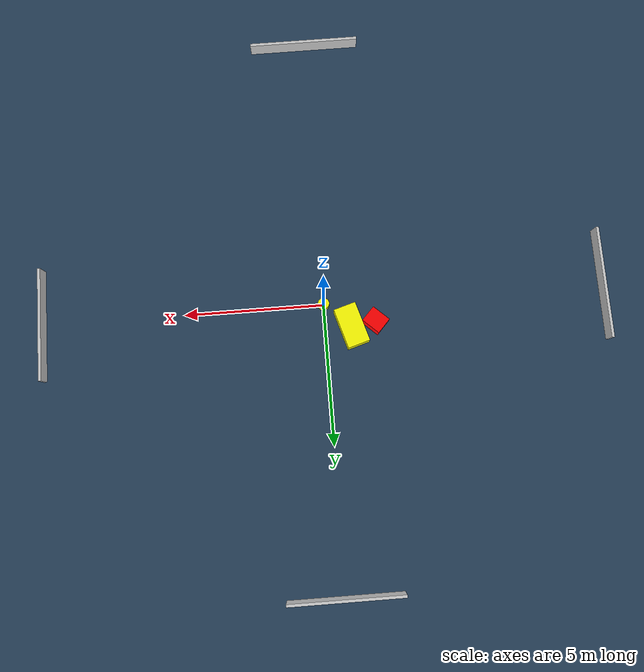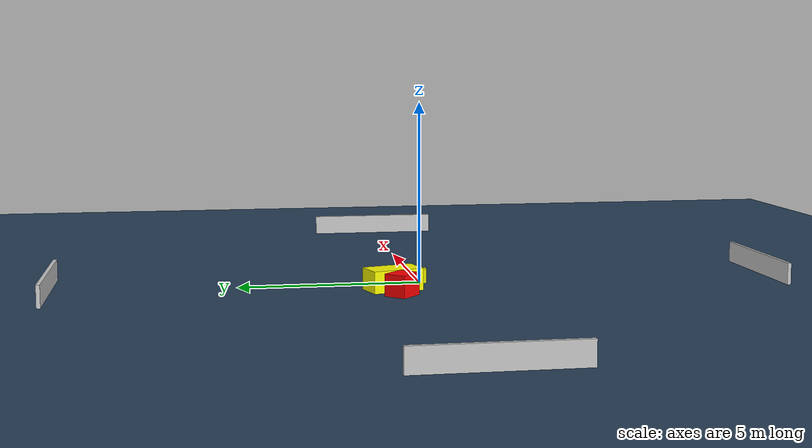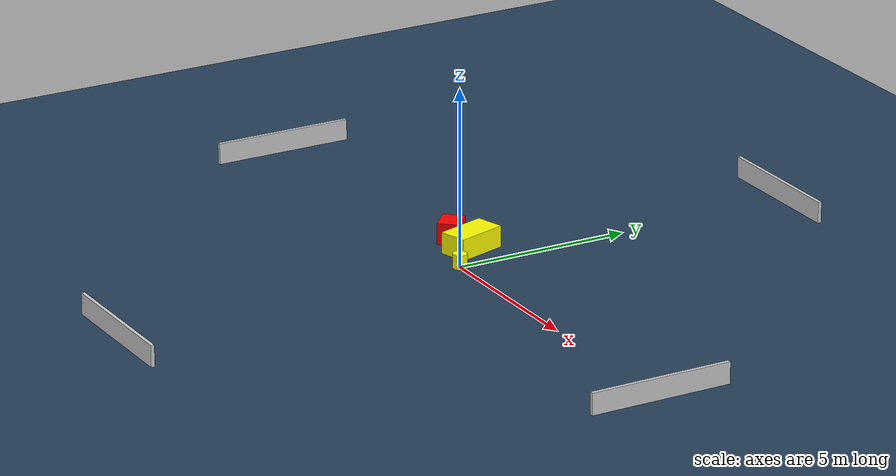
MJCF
<?xml version="1.0" ?>
<mujoco model="generated_environment">
  <option timestep="0.01" integrator="RK4" cone="elliptic"/>
  <default>
    <geom density="1"/>
  </default>
  <asset>
    <texture builtin="gradient" height="3072" name="skybox" rgb1="0.3 0.5 0.7" rgb2="0 0 0" type="skybox" width="512"/>
    <texture builtin="checker" height="300" name="groundplane" rgb1="0.2 0.3 0.4" rgb2="0.1 0.2 0.3" type="2d" width="300"/>
    <material name="groundplane" reflectance="0.2" texrepeat="5 5" texture="groundplane"/>
  </asset>
  <worldbody>
    <light dir="0 0 -1" directional="true" pos="0 0 1.5"/>
    <geom condim="3" friction="0.5 0.005 0.001" material="groundplane" name="floor" pos="0 0 0" size="0 0 0.05" type="plane"/>
    <body name="walls">
      <geom name="wall_1" condim="4" pos="-10.0 0.0 0.3" rgba="0.800000011920929 0.800000011920929 0.800000011920929 1.0" size="0.05 2.0 0.3" type="box"/>
      <geom name="wall_2" condim="4" pos="10.0 0.0 0.3" rgba="0.800000011920929 0.800000011920929 0.800000011920929 1.0" size="0.05 2.0 0.3" type="box"/>
      <geom name="wall_3" condim="4" pos="0.0 -10.0 0.3" rgba="0.800000011920929 0.800000011920929 0.800000011920929 1.0" size="2.0 0.05 0.3" type="box"/>
      <geom name="wall_4" condim="4" pos="0.0 10.0 0.3" rgba="0.800000011920929 0.800000011920929 0.800000011920929 1.0" size="2.0 0.05 0.3" type="box"/>
    </body>
    <body name="robot">
      <joint name="joint_x" type="slide" pos="0 0 0" axis="1 0 0"/>
      <joint name="joint_y" type="slide" pos="0 0 0" axis="0 1 0"/>
      <geom name="robot" type="cylinder" pos="0.0 0.0 0.2" size="0.2 0.2 0.0" mass="5.0" friction="1.0 0.005 0.0001" condim="4" rgba="1.0 1.0 0.0 1.0"/>
    </body>
    <body name="obstacle_1_movable">
      <geom name="obstacle_1_movable" condim="4" pos="-0.9255713307731126 0.8722317244948944 0.3" euler="0 0 196.6035961491376" friction="0.0 0.005 0.001" rgba="1.0 1.0 0.0 1.0" size="0.40335676695001116 0.7212711611915672 0.3" type="box" mass="0.1"/>
      <joint type="free"/>
    </body>
    <body name="obstacle_2_static">
      <geom name="obstacle_2_static" condim="4" pos="-1.787196025816035 0.7502581996960171 0.3" euler="0 0 317.2924907774212" friction="0.0 0.005 0.001" rgba="1.0 0.0 0.0 1.0" size="0.36080854342643315 0.309130720277517 0.3" type="box"/>
    </body>
  </worldbody>
  <actuator>
    <motor name="actuator_x" joint="joint_x" gear="1" ctrlrange="-1 1"/>
    <motor name="actuator_y" joint="joint_y" gear="1" ctrlrange="-1 1"/>
  </actuator>
</mujoco>
